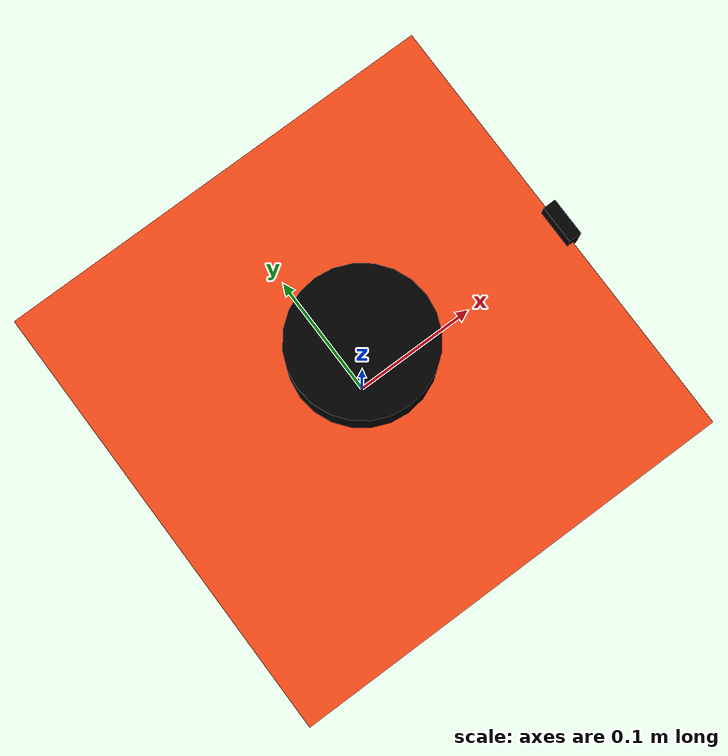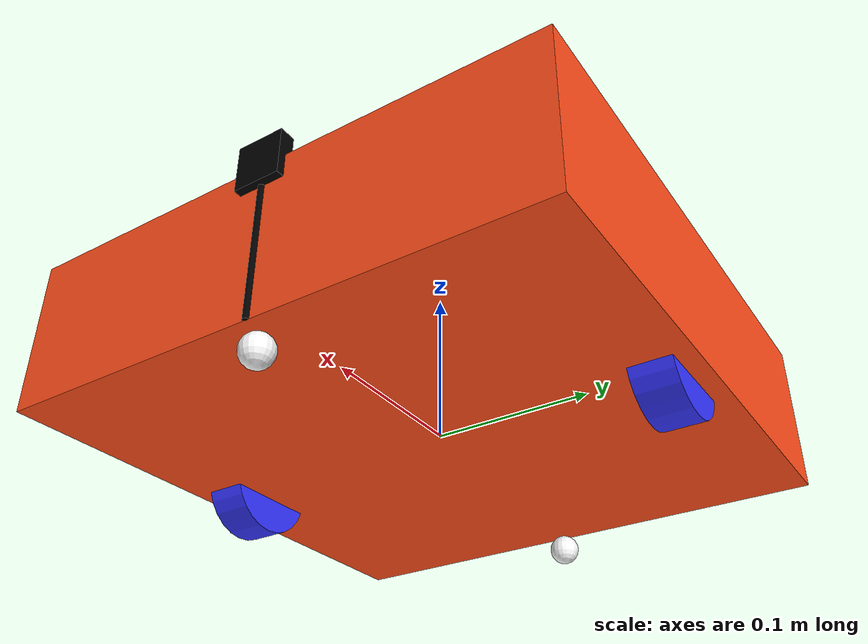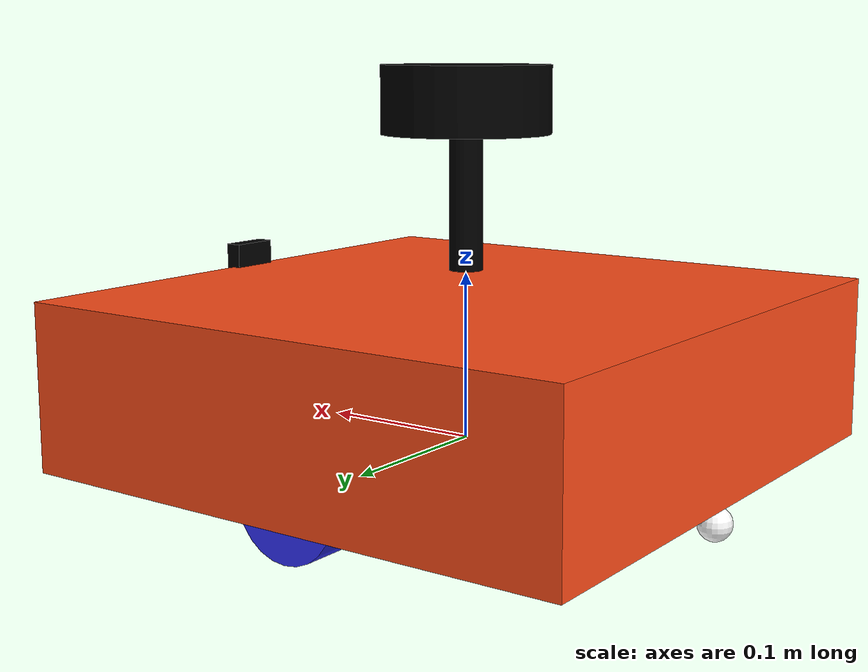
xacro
<?xml version="1.0"?>
<robot xmlns:xacro="http://www.ros.org/wiki/xacro"  name="robot">

   <xacro:include filename="robot_core.xacro" />

   <xacro:include filename="gazebo_control.xacro" />
   <xacro:include filename="lidar.xacro" />
   <xacro:include filename="camera.xacro" />
</robot>

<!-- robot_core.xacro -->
<robot xmlns:xacro="http://www.ros.org/wiki/xacro" >

    <xacro:include filename="inertial_macros.xacro"/>

    <xacro:property name="chassis_length" value="0.35"/>
    <xacro:property name="chassis_width" value="0.35"/>
    <xacro:property name="chassis_height" value="0.10"/>
    <xacro:property name="chassis_mass" value="1.0"/>

    <xacro:property name="wheel_radius" value="0.0325"/>
    <xacro:property name="wheel_thickness" value="0.026"/>
    <xacro:property name="wheel_mass" value="0.05"/>

    <xacro:property name="wheel_offset_x" value="0.0"/>
    <xacro:property name="wheel_offset_y" value="0.15"/>
    <xacro:property name="wheel_offset_z" value="0.01"/>

    <xacro:property name="caster_wheel_radius" value="0.01"/>
    <xacro:property name="caster_wheel_mass" value="0.01"/>
    <xacro:property name="caster_wheel_offset_x" value="0.165"/>
    <xacro:property name="caster_wheel_offset_z" value="${wheel_offset_z - wheel_radius + caster_wheel_radius}"/>

    <material name="white">
        <color rgba="1 1 1 1" />
    </material>

    <material name="orange">
        <color rgba="1 0.3 0.1 1"/>
    </material>

    <material name="blue">
        <color rgba="0.2 0.2 1 1"/>
    </material>

    <material name="black">
        <color rgba="0 0 0 1"/>
    </material>

    <material name="red">
        <color rgba="1 0 0 1"/>
    </material>

    <!-- BASE LINK -->

    <link name="base_link">

    </link>

    <!-- BASE_FOOTPRINT LINK -->

    <joint name="base_footprint_joint" type="fixed">
        <parent link="base_footprint"/>
        <child link="base_link"/>
        <origin xyz="0 0 0" rpy="0 0 0"/>
    </joint>

    <link name="base_footprint">
    </link>

    <!-- CHASSIS LINK -->

    <joint name="chassis_joint" type="fixed">
        <parent link="base_link"/>
        <child link="chassis"/>
        <origin xyz="${-wheel_offset_x} 0 ${-wheel_offset_z}"/>
    </joint>

    <link name="chassis">
        <visual>
            <origin xyz="0 0 ${chassis_height/2}"/>
            <geometry>
                <box size="${chassis_length} ${chassis_width} ${chassis_height}"/>
            </geometry>
            <material name="orange"/>
        </visual>
        <collision>
            <origin xyz="0 0 ${chassis_height/2}"/>
            <geometry>
                <box size="${chassis_length} ${chassis_width} ${chassis_height}"/>
            </geometry>
        </collision>
        <xacro:inertial_box mass="0.5" x="${chassis_length}" y="${chassis_width}" z="${chassis_height}">
            <origin xyz="0 0 ${chassis_height/2}" rpy="0 0 0"/>
        </xacro:inertial_box>
    </link>

    <gazebo reference="chassis">
        <material>Gazebo/Orange</material>
    </gazebo>

     <!-- IMU Link -->
    <link name="imu_link">
    <visual>
        <origin xyz="0 0 0" rpy="0 0 0"/>
        <geometry>
            <box size="0.01 0.01 0.01"/>  <!-- tiny box for IMU -->
        </geometry>
        <material name="Grey">
            <color rgba="0.5 0.5 0.5 1.0"/>
        </material>
    </visual>
    </link>

    <!-- Static Joint Between Base and IMU -->
    <joint name="imu_joint" type="fixed">
        <parent link="base_link"/>
        <child link="imu_link"/>
        <!-- Replace xyz and rpy with actual physical mounting position -->
        <origin xyz="0.0 0.0 0.05" rpy="0 0 0"/>
    </joint>

     <gazebo reference="imu_link">
        <material>Gazebo/Orange</material>
    </gazebo>

    <!-- LEFT WHEEL LINK -->

    <joint name="left_wheel_joint" type="continuous">
        <parent link="base_link"/>
        <child link="left_wheel"/>
        <origin xyz="0 ${wheel_offset_y} 0" rpy="-${pi/2} 0 0" />
        <axis xyz="0 0 1"/>
    </joint>

    <link name="left_wheel">
        <visual>
            <geometry>
                <cylinder radius="${wheel_radius}" length="${wheel_thickness}"/>
            </geometry>
            <material name="blue"/>
        </visual>
        <collision>
            <geometry>
                <sphere radius="${wheel_radius}"/>
            </geometry>
        </collision>
        <xacro:inertial_cylinder mass="${wheel_mass}" length="${wheel_thickness}" radius="${wheel_radius}">
            <origin xyz="0 0 0" rpy="0 0 0"/>
        </xacro:inertial_cylinder>
    </link>

    <gazebo reference="left_wheel">
        <material>Gazebo/Blue</material>
    </gazebo>

    <!-- RIGHT WHEEL LINK -->

    <joint name="right_wheel_joint" type="continuous">
        <parent link="base_link"/>
        <child link="right_wheel"/>
        <origin xyz="0 ${-wheel_offset_y} 0" rpy="${pi/2} 0 0" />
        <axis xyz="0 0 -1"/>
    </joint>

    <link name="right_wheel">
        <visual>
            <geometry>
                <cylinder radius="${wheel_radius}" length="${wheel_thickness}"/>
            </geometry>
            <material name="blue"/>
        </visual>
        <collision>
            <geometry>
                <sphere radius="${wheel_radius}"/>
            </geometry>
        </collision>
        <xacro:inertial_cylinder mass="${wheel_mass}" length="${wheel_thickness}" radius="${wheel_radius}">
            <origin xyz="0 0 0" rpy="0 0 0"/>
        </xacro:inertial_cylinder>
    </link>

    <gazebo reference="right_wheel">
        <material>Gazebo/Blue</material>
    </gazebo>

    <!-- CASTER WHEEL LINK -->

    <joint name="caster_wheel_joint" type="fixed">
        <parent link="chassis"/>
        <child link="caster_wheel"/>
        <origin xyz="${caster_wheel_offset_x} 0 ${caster_wheel_offset_z}"/>
    </joint>

    <link name="caster_wheel">
        <visual>
            <geometry>
                <sphere radius="${caster_wheel_radius}"/>
            </geometry>
            <material name="white"/>
        </visual>
        <collision>
            <geometry>
                <sphere radius="${caster_wheel_radius}"/>
            </geometry>
        </collision>
        <xacro:inertial_sphere mass="${caster_wheel_mass}" radius="${caster_wheel_radius}">
            <origin xyz="0 0 0" rpy="0 0 0"/>
        </xacro:inertial_sphere>
    </link>

    <gazebo reference="caster_wheel">
        <material>Gazebo/White</material>
        <mu1 value="0.001"/>
        <mu2 value="0.001"/>
    </gazebo>

    <!-- CASTER WHEEL LINK 2 -->

    <joint name="caster_wheel_joint_2" type="fixed">
        <parent link="chassis"/>
        <child link="caster_wheel_2"/>
        <origin xyz="${-caster_wheel_offset_x} 0 ${caster_wheel_offset_z}"/>
    </joint>

    <link name="caster_wheel_2">
        <visual>
            <geometry>
                <sphere radius="${caster_wheel_radius}"/>
            </geometry>
            <material name="white"/>
        </visual>
        <collision>
            <geometry>
                <sphere radius="${caster_wheel_radius}"/>
            </geometry>
        </collision>
        <xacro:inertial_sphere mass="${caster_wheel_mass}" radius="${caster_wheel_radius}">
            <origin xyz="0 0 0" rpy="0 0 0"/>
        </xacro:inertial_sphere>
    </link>

    <gazebo reference="caster_wheel_2">
        <material>Gazebo/White</material>
        <mu1 value="0.001"/>
        <mu2 value="0.001"/>
    </gazebo>

</robot>

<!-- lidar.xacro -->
<robot xmlns:xacro="http://www.ros.org/wiki/xacro" >

    <joint name="laser_joint" type="fixed">
        <parent link="chassis"/>
        <child link="laser_frame"/>
        <origin xyz="0 0 0.212" rpy="0 0 0"/>
    </joint>

    <link name="laser_frame">
        <visual>
            <geometry>
                <cylinder radius="0.05" length="0.04"/>
            </geometry>
            <material name="black"/>
        </visual>
        <visual>
            <origin xyz="0 0 -0.05"/>
            <geometry>
                <cylinder radius="0.01" length="0.1"/>
            </geometry>
            <material name="black"/>
        </visual>
        <collision>
            <geometry>
                <cylinder radius="0.05" length="0.04"/>
            </geometry>
        </collision>
        <xacro:inertial_cylinder mass="0.1" length="0.04" radius="0.05">
            <origin xyz="0 0 0" rpy="0 0 0"/>
        </xacro:inertial_cylinder>
    </link>

    <gazebo reference="laser_frame">
        <material>Gazebo/Black</material>

        <sensor name="laser" type="gpu_lidar">
            <pose> 0 0 0 0 0 0 </pose>
            <visualize>false</visualize>
            <update_rate>10</update_rate>
            <lidar>
                <scan>
                    <horizontal>
                        <samples>360</samples>
                        <min_angle>-3.14</min_angle>
                        <max_angle>3.14</max_angle>
                    </horizontal>
                </scan>
                <range>
                    <min>0.3</min>
                    <max>12</max>
                </range>
            </lidar>
            <topic>scan</topic>
            <gz_frame_id>laser_frame</gz_frame_id>
        </sensor>
    </gazebo>

</robot>

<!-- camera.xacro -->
<robot xmlns:xacro="http://www.ros.org/wiki/xacro" >

    <joint name="camera_joint" type="fixed">
        <parent link="chassis"/>
        <child link="camera_link"/>
        <origin xyz="0.175 0 0.10" rpy="0 0.0 0"/>
    </joint>

    <link name="camera_link">
        <visual>
            <geometry>
                <box size="0.010 0.03 0.03"/>
            </geometry>
            <material name="black"/>
        </visual>
        <visual>
            <origin xyz="0 0 -0.05"/>
            <geometry>
                <cylinder radius="0.002" length="0.1"/>
            </geometry>
            <material name="black"/>
        </visual>
    </link>

    <joint name="camera_optical_joint" type="fixed">
        <parent link="camera_link"/>
        <child link="camera_link_optical"/>
        <origin xyz="0 0 0" rpy="${-pi/2} 0 ${-pi/2}"/>
    </joint>

    <link name="camera_link_optical"></link>

    <gazebo reference="camera_link">
        <material>Gazebo/Black</material>

        <sensor name="camera" type="camera">
            <pose> 0 0 0 0 0 0 </pose>
            <visualize>true</visualize>
            <update_rate>10</update_rate>
            <camera>
                <camera_info_topic>camera/camera_info</camera_info_topic>
                <horizontal_fov>1.089</horizontal_fov>
                <image>
                    <format>R8G8B8</format>
                    <width>640</width>
                    <height>480</height>
                </image>
                <clip>
                    <near>0.05</near>
                    <far>8.0</far>
                </clip>
            </camera>
            <topic>camera/image_raw</topic>
            <gz_frame_id>camera_link_optical</gz_frame_id>
        </sensor>
    </gazebo>

</robot>
